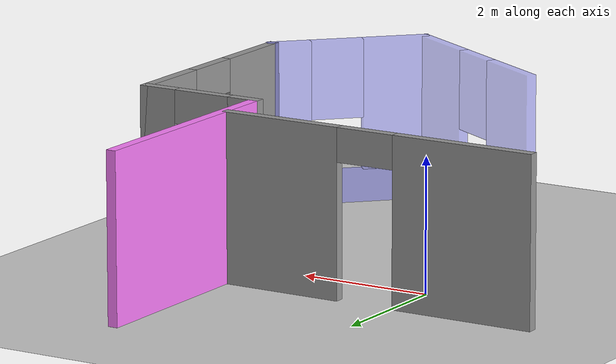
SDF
<sdf version="1.6">
 <world name="default">
  <model name="ground_plane">
   <static>1</static>
   <link name="link">
    <collision name="collision">
     <geometry><plane><normal>0 0 1</normal><size>100 100</size></plane></geometry>
     <surface>
      <contact><collide_bitmask>65535</collide_bitmask></contact>
      <friction><ode><mu>100</mu><mu2>50</mu2></ode></friction>
     </surface>
    </collision>
    <visual name="visual">
     <cast_shadows>0</cast_shadows>
     <geometry><plane><normal>0 0 1</normal><size>100 100</size></plane></geometry>
     <material>
      <script><uri>file://media/materials/scripts/gazebo.material</uri><name>Gazebo/Grey</name></script>
     </material>
    </visual>
   </link>
  </model>
  <model name="house">
   <link name="Wall_10">
    <pose>3.72086 -3.525 0 0 0 -2.35619</pose>
    <inertial>
     <mass>1</mass>
     <inertia><ixx>1</ixx><ixy>0</ixy><ixz>0</ixz><iyy>1</iyy><iyz>0</iyz><izz>1</izz></inertia>
    </inertial>
    <visual name="Wall_10_Visual_0">
     <pose>-0.917996 0 1.25 0 -0 0</pose>
     <geometry><box><size>0.664008 0.15 2.5</size></box></geometry>
     <material>
      <script><uri>file://media/materials/scripts/gazebo.material</uri><name>Gazebo/Grey</name></script>
      <ambient>0.5 0.5 1 0.5</ambient>
      <shader type="pixel"><normal_map>__default__</normal_map></shader>
      <diffuse>0.7 0.7 0.7 1</diffuse>
      <specular>0.01 0.01 0.01 1</specular>
      <emissive>0 0 0 1</emissive>
     </material>
     <meta><layer>0</layer></meta>
    </visual>
    <visual name="Wall_10_Visual_1">
     <pose>0.332004 0 0.25 0 -0 0</pose>
     <geometry><box><size>1.83599 0.15 0.5</size></box></geometry>
     <material>
      <script><uri>file://media/materials/scripts/gazebo.material</uri><name>Gazebo/Grey</name></script>
      <ambient>0.5 0.5 1 0.5</ambient>
      <shader type="pixel"><normal_map>__default__</normal_map></shader>
      <diffuse>0.7 0.7 0.7 1</diffuse>
      <specular>0.01 0.01 0.01 1</specular>
      <emissive>0 0 0 1</emissive>
     </material>
     <meta><layer>0</layer></meta>
    </visual>
    <visual name="Wall_10_Visual_2">
     <pose>0.732004 0 1.5 0 -0 0</pose>
     <geometry><box><size>1.03599 0.15 2</size></box></geometry>
     <material>
      <script><uri>file://media/materials/scripts/gazebo.material</uri><name>Gazebo/Grey</name></script>
      <ambient>0.5 0.5 1 0.5</ambient>
      <shader type="pixel"><normal_map>__default__</normal_map></shader>
      <diffuse>0.7 0.7 0.7 1</diffuse>
      <specular>0.01 0.01 0.01 1</specular>
      <emissive>0 0 0 1</emissive>
     </material>
     <meta><layer>0</layer></meta>
    </visual>
    <visual name="Wall_10_Visual_3">
     <pose>-0.185992 0 1.9 0 -0 0</pose>
     <geometry><box><size>0.8 0.15 1.2</size></box></geometry>
     <material>
      <script><uri>file://media/materials/scripts/gazebo.material</uri><name>Gazebo/Grey</name></script>
      <ambient>0.5 0.5 1 0.5</ambient>
      <shader type="pixel"><normal_map>__default__</normal_map></shader>
      <diffuse>0.7 0.7 0.7 1</diffuse>
      <specular>0.01 0.01 0.01 1</specular>
      <emissive>0 0 0 1</emissive>
     </material>
     <meta><layer>0</layer></meta>
    </visual>
    <collision name="Wall_10_Collision_0">
     <pose>-0.917996 0 1.25 0 -0 0</pose>
     <geometry><box><size>0.664008 0.15 2.5</size></box></geometry>
     <surface>
      <friction>
       <ode><mu>1</mu><mu2>1</mu2><fdir1>0 0 0</fdir1><slip1>0</slip1><slip2>0</slip2></ode>
       <torsional>
        <coefficient>1</coefficient>
        <patch_radius>0</patch_radius>
        <surface_radius>0</surface_radius>
        <use_patch_radius>1</use_patch_radius>
        <ode><slip>0</slip></ode>
       </torsional>
      </friction>
      <bounce><restitution_coefficient>0</restitution_coefficient><threshold>1e+06</threshold></bounce>
      <contact>
       <collide_without_contact>0</collide_without_contact>
       <collide_without_contact_bitmask>1</collide_without_contact_bitmask>
       <collide_bitmask>1</collide_bitmask>
       <ode>
        <soft_cfm>0</soft_cfm>
        <soft_erp>0.2</soft_erp>
        <kp>1e+13</kp>
        <kd>1</kd>
        <max_vel>0.01</max_vel>
        <min_depth>0</min_depth>
       </ode>
       <bullet>
        <split_impulse>1</split_impulse>
        <split_impulse_penetration_threshold>-0.01</split_impulse_penetration_threshold>
        <soft_cfm>0</soft_cfm>
        <soft_erp>0.2</soft_erp>
        <kp>1e+13</kp>
        <kd>1</kd>
       </bullet>
      </contact>
     </surface>
    </collision>
    <collision name="Wall_10_Collision_1">
     <pose>0.332004 0 0.25 0 -0 0</pose>
     <geometry><box><size>1.83599 0.15 0.5</size></box></geometry>
     <surface>
      <friction>
       <ode><mu>1</mu><mu2>1</mu2><fdir1>0 0 0</fdir1><slip1>0</slip1><slip2>0</slip2></ode>
       <torsional>
        <coefficient>1</coefficient>
        <patch_radius>0</patch_radius>
        <surface_radius>0</surface_radius>
        <use_patch_radius>1</use_patch_radius>
        <ode><slip>0</slip></ode>
       </torsional>
      </friction>
      <bounce><restitution_coefficient>0</restitution_coefficient><threshold>1e+06</threshold></bounce>
      <contact>
       <collide_without_contact>0</collide_without_contact>
       <collide_without_contact_bitmask>1</collide_without_contact_bitmask>
       <collide_bitmask>1</collide_bitmask>
       <ode>
        <soft_cfm>0</soft_cfm>
        <soft_erp>0.2</soft_erp>
        <kp>1e+13</kp>
        <kd>1</kd>
        <max_vel>0.01</max_vel>
        <min_depth>0</min_depth>
       </ode>
       <bullet>
        <split_impulse>1</split_impulse>
        <split_impulse_penetration_threshold>-0.01</split_impulse_penetration_threshold>
        <soft_cfm>0</soft_cfm>
        <soft_erp>0.2</soft_erp>
        <kp>1e+13</kp>
        <kd>1</kd>
       </bullet>
      </contact>
     </surface>
    </collision>
    <collision name="Wall_10_Collision_2">
     <pose>0.732004 0 1.5 0 -0 0</pose>
     <geometry><box><size>1.03599 0.15 2</size></box></geometry>
     <surface>
      <friction>
       <ode><mu>1</mu><mu2>1</mu2><fdir1>0 0 0</fdir1><slip1>0</slip1><slip2>0</slip2></ode>
       <torsional>
        <coefficient>1</coefficient>
        <patch_radius>0</patch_radius>
        <surface_radius>0</surface_radius>
        <use_patch_radius>1</use_patch_radius>
        <ode><slip>0</slip></ode>
       </torsional>
      </friction>
      <bounce><restitution_coefficient>0</restitution_coefficient><threshold>1e+06</threshold></bounce>
      <contact>
       <collide_without_contact>0</collide_without_contact>
       <collide_without_contact_bitmask>1</collide_without_contact_bitmask>
       <collide_bitmask>1</collide_bitmask>
       <ode>
        <soft_cfm>0</soft_cfm>
        <soft_erp>0.2</soft_erp>
        <kp>1e+13</kp>
        <kd>1</kd>
        <max_vel>0.01</max_vel>
        <min_depth>0</min_depth>
       </ode>
       <bullet>
        <split_impulse>1</split_impulse>
        <split_impulse_penetration_threshold>-0.01</split_impulse_penetration_threshold>
        <soft_cfm>0</soft_cfm>
        <soft_erp>0.2</soft_erp>
        <kp>1e+13</kp>
        <kd>1</kd>
       </bullet>
      </contact>
     </surface>
    </collision>
    <collision name="Wall_10_Collision_3">
     <pose>-0.185992 0 1.9 0 -0 0</pose>
     <geometry><box><size>0.8 0.15 1.2</size></box></geometry>
     <surface>
      <friction>
       <ode><mu>1</mu><mu2>1</mu2><fdir1>0 0 0</fdir1><slip1>0</slip1><slip2>0</slip2></ode>
       <torsional>
        <coefficient>1</coefficient>
        <patch_radius>0</patch_radius>
        <surface_radius>0</surface_radius>
        <use_patch_radius>1</use_patch_radius>
        <ode><slip>0</slip></ode>
       </torsional>
      </friction>
      <bounce><restitution_coefficient>0</restitution_coefficient><threshold>1e+06</threshold></bounce>
      <contact>
       <collide_without_contact>0</collide_without_contact>
       <collide_without_contact_bitmask>1</collide_without_contact_bitmask>
       <collide_bitmask>1</collide_bitmask>
       <ode>
        <soft_cfm>0</soft_cfm>
        <soft_erp>0.2</soft_erp>
        <kp>1e+13</kp>
        <kd>1</kd>
        <max_vel>0.01</max_vel>
        <min_depth>0</min_depth>
       </ode>
       <bullet>
        <split_impulse>1</split_impulse>
        <split_impulse_penetration_threshold>-0.01</split_impulse_penetration_threshold>
        <soft_cfm>0</soft_cfm>
        <soft_erp>0.2</soft_erp>
        <kp>1e+13</kp>
        <kd>1</kd>
       </bullet>
      </contact>
     </surface>
    </collision>
   </link>
   <link name="Wall_11">
    <pose>1.54767 -3.58085 0 0 -0 2.61799</pose>
    <inertial>
     <mass>1</mass>
     <inertia><ixx>1</ixx><ixy>0</ixy><ixz>0</ixz><iyy>1</iyy><iyz>0</iyz><izz>1</izz></inertia>
    </inertial>
    <visual name="Wall_11_Visual_0">
     <pose>-0.990098 0 1.25 0 -0 0</pose>
     <geometry><box><size>1.2698 0.15 2.5</size></box></geometry>
     <material>
      <script><uri>file://media/materials/scripts/gazebo.material</uri><name>Gazebo/Grey</name></script>
      <ambient>0.5 0.5 1 0.5</ambient>
      <shader type="pixel"><normal_map>__default__</normal_map></shader>
      <diffuse>0.7 0.7 0.7 1</diffuse>
      <specular>0.01 0.01 0.01 1</specular>
      <emissive>0 0 0 1</emissive>
     </material>
     <meta><layer>0</layer></meta>
    </visual>
    <visual name="Wall_11_Visual_1">
     <pose>0.634902 0 0.25 0 -0 0</pose>
     <geometry><box><size>1.9802 0.15 0.5</size></box></geometry>
     <material>
      <script><uri>file://media/materials/scripts/gazebo.material</uri><name>Gazebo/Grey</name></script>
      <ambient>0.5 0.5 1 0.5</ambient>
      <shader type="pixel"><normal_map>__default__</normal_map></shader>
      <diffuse>0.7 0.7 0.7 1</diffuse>
      <specular>0.01 0.01 0.01 1</specular>
      <emissive>0 0 0 1</emissive>
     </material>
     <meta><layer>0</layer></meta>
    </visual>
    <visual name="Wall_11_Visual_2">
     <pose>1.0349 0 1.5 0 -0 0</pose>
     <geometry><box><size>1.1802 0.15 2</size></box></geometry>
     <material>
      <script><uri>file://media/materials/scripts/gazebo.material</uri><name>Gazebo/Grey</name></script>
      <ambient>0.5 0.5 1 0.5</ambient>
      <shader type="pixel"><normal_map>__default__</normal_map></shader>
      <diffuse>0.7 0.7 0.7 1</diffuse>
      <specular>0.01 0.01 0.01 1</specular>
      <emissive>0 0 0 1</emissive>
     </material>
     <meta><layer>0</layer></meta>
    </visual>
    <visual name="Wall_11_Visual_3">
     <pose>0.044803 0 1.9 0 -0 0</pose>
     <geometry><box><size>0.8 0.15 1.2</size></box></geometry>
     <material>
      <script><uri>file://media/materials/scripts/gazebo.material</uri><name>Gazebo/Grey</name></script>
      <ambient>0.5 0.5 1 0.5</ambient>
      <shader type="pixel"><normal_map>__default__</normal_map></shader>
      <diffuse>0.7 0.7 0.7 1</diffuse>
      <specular>0.01 0.01 0.01 1</specular>
      <emissive>0 0 0 1</emissive>
     </material>
     <meta><layer>0</layer></meta>
    </visual>
    <collision name="Wall_11_Collision_0">
     <pose>-0.990098 0 1.25 0 -0 0</pose>
     <geometry><box><size>1.2698 0.15 2.5</size></box></geometry>
     <surface>
      <friction>
       <ode><mu>1</mu><mu2>1</mu2><fdir1>0 0 0</fdir1><slip1>0</slip1><slip2>0</slip2></ode>
       <torsional>
        <coefficient>1</coefficient>
        <patch_radius>0</patch_radius>
        <surface_radius>0</surface_radius>
        <use_patch_radius>1</use_patch_radius>
        <ode><slip>0</slip></ode>
       </torsional>
      </friction>
      <bounce><restitution_coefficient>0</restitution_coefficient><threshold>1e+06</threshold></bounce>
      <contact>
       <collide_without_contact>0</collide_without_contact>
       <collide_without_contact_bitmask>1</collide_without_contact_bitmask>
       <collide_bitmask>1</collide_bitmask>
       <ode>
        <soft_cfm>0</soft_cfm>
        <soft_erp>0.2</soft_erp>
        <kp>1e+13</kp>
        <kd>1</kd>
        <max_vel>0.01</max_vel>
        <min_depth>0</min_depth>
       </ode>
       <bullet>
        <split_impulse>1</split_impulse>
        <split_impulse_penetration_threshold>-0.01</split_impulse_penetration_threshold>
        <soft_cfm>0</soft_cfm>
        <soft_erp>0.2</soft_erp>
        <kp>1e+13</kp>
        <kd>1</kd>
       </bullet>
      </contact>
     </surface>
    </collision>
    <collision name="Wall_11_Collision_1">
     <pose>0.634902 0 0.25 0 -0 0</pose>
     <geometry><box><size>1.9802 0.15 0.5</size></box></geometry>
     <surface>
      <friction>
       <ode><mu>1</mu><mu2>1</mu2><fdir1>0 0 0</fdir1><slip1>0</slip1><slip2>0</slip2></ode>
       <torsional>
        <coefficient>1</coefficient>
        <patch_radius>0</patch_radius>
        <surface_radius>0</surface_radius>
        <use_patch_radius>1</use_patch_radius>
        <ode><slip>0</slip></ode>
       </torsional>
      </friction>
      <bounce><restitution_coefficient>0</restitution_coefficient><threshold>1e+06</threshold></bounce>
      <contact>
       <collide_without_contact>0</collide_without_contact>
       <collide_without_contact_bitmask>1</collide_without_contact_bitmask>
       <collide_bitmask>1</collide_bitmask>
       <ode>
        <soft_cfm>0</soft_cfm>
        <soft_erp>0.2</soft_erp>
        <kp>1e+13</kp>
        <kd>1</kd>
        <max_vel>0.01</max_vel>
        <min_depth>0</min_depth>
       </ode>
       <bullet>
        <split_impulse>1</split_impulse>
        <split_impulse_penetration_threshold>-0.01</split_impulse_penetration_threshold>
        <soft_cfm>0</soft_cfm>
        <soft_erp>0.2</soft_erp>
        <kp>1e+13</kp>
        <kd>1</kd>
       </bullet>
      </contact>
     </surface>
    </collision>
    <collision name="Wall_11_Collision_2">
     <pose>1.0349 0 1.5 0 -0 0</pose>
     <geometry><box><size>1.1802 0.15 2</size></box></geometry>
     <surface>
      <friction>
       <ode><mu>1</mu><mu2>1</mu2><fdir1>0 0 0</fdir1><slip1>0</slip1><slip2>0</slip2></ode>
       <torsional>
        <coefficient>1</coefficient>
        <patch_radius>0</patch_radius>
        <surface_radius>0</surface_radius>
        <use_patch_radius>1</use_patch_radius>
        <ode><slip>0</slip></ode>
       </torsional>
      </friction>
      <bounce><restitution_coefficient>0</restitution_coefficient><threshold>1e+06</threshold></bounce>
      <contact>
       <collide_without_contact>0</collide_without_contact>
       <collide_without_contact_bitmask>1</collide_without_contact_bitmask>
       <collide_bitmask>1</collide_bitmask>
       <ode>
        <soft_cfm>0</soft_cfm>
        <soft_erp>0.2</soft_erp>
        <kp>1e+13</kp>
        <kd>1</kd>
        <max_vel>0.01</max_vel>
        <min_depth>0</min_depth>
       </ode>
       <bullet>
        <split_impulse>1</split_impulse>
        <split_impulse_penetration_threshold>-0.01</split_impulse_penetration_threshold>
        <soft_cfm>0</soft_cfm>
        <soft_erp>0.2</soft_erp>
        <kp>1e+13</kp>
        <kd>1</kd>
       </bullet>
      </contact>
     </surface>
    </collision>
    <collision name="Wall_11_Collision_3">
     <pose>0.044803 0 1.9 0 -0 0</pose>
     <geometry><box><size>0.8 0.15 1.2</size></box></geometry>
     <surface>
      <friction>
       <ode><mu>1</mu><mu2>1</mu2><fdir1>0 0 0</fdir1><slip1>0</slip1><slip2>0</slip2></ode>
       <torsional>
        <coefficient>1</coefficient>
        <patch_radius>0</patch_radius>
        <surface_radius>0</surface_radius>
        <use_patch_radius>1</use_patch_radius>
        <ode><slip>0</slip></ode>
       </torsional>
      </friction>
      <bounce><restitution_coefficient>0</restitution_coefficient><threshold>1e+06</threshold></bounce>
      <contact>
       <collide_without_contact>0</collide_without_contact>
       <collide_without_contact_bitmask>1</collide_without_contact_bitmask>
       <collide_bitmask>1</collide_bitmask>
       <ode>
        <soft_cfm>0</soft_cfm>
        <soft_erp>0.2</soft_erp>
        <kp>1e+13</kp>
        <kd>1</kd>
        <max_vel>0.01</max_vel>
        <min_depth>0</min_depth>
       </ode>
       <bullet>
        <split_impulse>1</split_impulse>
        <split_impulse_penetration_threshold>-0.01</split_impulse_penetration_threshold>
        <soft_cfm>0</soft_cfm>
        <soft_erp>0.2</soft_erp>
        <kp>1e+13</kp>
        <kd>1</kd>
       </bullet>
      </contact>
     </surface>
    </collision>
   </link>
   <link name="Wall_24">
    <pose>4.55171 -1.01915 0 0 -0 1.5708</pose>
    <inertial>
     <mass>1</mass>
     <inertia><ixx>1</ixx><ixy>0</ixy><ixz>0</ixz><iyy>1</iyy><iyz>0</iyz><izz>1</izz></inertia>
    </inertial>
    <visual name="Wall_24_Visual_0">
     <pose>-1.0809 0 1.25 0 -0 0</pose>
     <geometry><box><size>1.3382 0.15 2.5</size></box></geometry>
     <material>
      <script><uri>file://media/materials/scripts/gazebo.material</uri><name>Gazebo/Grey</name></script>
      <ambient>0.5 0.5 0.5 0.5</ambient>
      <shader type="pixel"><normal_map>__default__</normal_map></shader>
      <diffuse>0.7 0.7 0.7 1</diffuse>
      <specular>0.01 0.01 0.01 1</specular>
      <emissive>0 0 0 1</emissive>
     </material>
     <meta><layer>0</layer></meta>
    </visual>
    <visual name="Wall_24_Visual_1">
     <pose>1.1191 0 1.25 0 -0 0</pose>
     <geometry><box><size>1.2618 0.15 2.5</size></box></geometry>
     <material>
      <script><uri>file://media/materials/scripts/gazebo.material</uri><name>Gazebo/Grey</name></script>
      <ambient>0.5 0.5 0.5 0.5</ambient>
      <shader type="pixel"><normal_map>__default__</normal_map></shader>
      <diffuse>0.7 0.7 0.7 1</diffuse>
      <specular>0.01 0.01 0.01 1</specular>
      <emissive>0 0 0 1</emissive>
     </material>
     <meta><layer>0</layer></meta>
    </visual>
    <visual name="Wall_24_Visual_2">
     <pose>0.038199 0 2.25 0 -0 0</pose>
     <geometry><box><size>0.9 0.15 0.5</size></box></geometry>
     <material>
      <script><uri>file://media/materials/scripts/gazebo.material</uri><name>Gazebo/Grey</name></script>
      <ambient>0.5 0.5 0.5 0.5</ambient>
      <shader type="pixel"><normal_map>__default__</normal_map></shader>
      <diffuse>0.7 0.7 0.7 1</diffuse>
      <specular>0.01 0.01 0.01 1</specular>
      <emissive>0 0 0 1</emissive>
     </material>
     <meta><layer>0</layer></meta>
    </visual>
    <collision name="Wall_24_Collision_0">
     <pose>-1.0809 0 1.25 0 -0 0</pose>
     <geometry><box><size>1.3382 0.15 2.5</size></box></geometry>
     <surface>
      <friction>
       <ode><mu>1</mu><mu2>1</mu2><fdir1>0 0 0</fdir1><slip1>0</slip1><slip2>0</slip2></ode>
       <torsional>
        <coefficient>1</coefficient>
        <patch_radius>0</patch_radius>
        <surface_radius>0</surface_radius>
        <use_patch_radius>1</use_patch_radius>
        <ode><slip>0</slip></ode>
       </torsional>
      </friction>
      <bounce><restitution_coefficient>0</restitution_coefficient><threshold>1e+06</threshold></bounce>
      <contact>
       <collide_without_contact>0</collide_without_contact>
       <collide_without_contact_bitmask>1</collide_without_contact_bitmask>
       <collide_bitmask>1</collide_bitmask>
       <ode>
        <soft_cfm>0</soft_cfm>
        <soft_erp>0.2</soft_erp>
        <kp>1e+13</kp>
        <kd>1</kd>
        <max_vel>0.01</max_vel>
        <min_depth>0</min_depth>
       </ode>
       <bullet>
        <split_impulse>1</split_impulse>
        <split_impulse_penetration_threshold>-0.01</split_impulse_penetration_threshold>
        <soft_cfm>0</soft_cfm>
        <soft_erp>0.2</soft_erp>
        <kp>1e+13</kp>
        <kd>1</kd>
       </bullet>
      </contact>
     </surface>
    </collision>
    <collision name="Wall_24_Collision_1">
     <pose>1.1191 0 1.25 0 -0 0</pose>
     <geometry><box><size>1.2618 0.15 2.5</size></box></geometry>
     <surface>
      <friction>
       <ode><mu>1</mu><mu2>1</mu2><fdir1>0 0 0</fdir1><slip1>0</slip1><slip2>0</slip2></ode>
       <torsional>
        <coefficient>1</coefficient>
        <patch_radius>0</patch_radius>
        <surface_radius>0</surface_radius>
        <use_patch_radius>1</use_patch_radius>
        <ode><slip>0</slip></ode>
       </torsional>
      </friction>
      <bounce><restitution_coefficient>0</restitution_coefficient><threshold>1e+06</threshold></bounce>
      <contact>
       <collide_without_contact>0</collide_without_contact>
       <collide_without_contact_bitmask>1</collide_without_contact_bitmask>
       <collide_bitmask>1</collide_bitmask>
       <ode>
        <soft_cfm>0</soft_cfm>
        <soft_erp>0.2</soft_erp>
        <kp>1e+13</kp>
        <kd>1</kd>
        <max_vel>0.01</max_vel>
        <min_depth>0</min_depth>
       </ode>
       <bullet>
        <split_impulse>1</split_impulse>
        <split_impulse_penetration_threshold>-0.01</split_impulse_penetration_threshold>
        <soft_cfm>0</soft_cfm>
        <soft_erp>0.2</soft_erp>
        <kp>1e+13</kp>
        <kd>1</kd>
       </bullet>
      </contact>
     </surface>
    </collision>
    <collision name="Wall_24_Collision_2">
     <pose>0.038199 0 2.25 0 -0 0</pose>
     <geometry><box><size>0.9 0.15 0.5</size></box></geometry>
     <surface>
      <friction>
       <ode><mu>1</mu><mu2>1</mu2><fdir1>0 0 0</fdir1><slip1>0</slip1><slip2>0</slip2></ode>
       <torsional>
        <coefficient>1</coefficient>
        <patch_radius>0</patch_radius>
        <surface_radius>0</surface_radius>
        <use_patch_radius>1</use_patch_radius>
        <ode><slip>0</slip></ode>
       </torsional>
      </friction>
      <bounce><restitution_coefficient>0</restitution_coefficient><threshold>1e+06</threshold></bounce>
      <contact>
       <collide_without_contact>0</collide_without_contact>
       <collide_without_contact_bitmask>1</collide_without_contact_bitmask>
       <collide_bitmask>1</collide_bitmask>
       <ode>
        <soft_cfm>0</soft_cfm>
        <soft_erp>0.2</soft_erp>
        <kp>1e+13</kp>
        <kd>1</kd>
        <max_vel>0.01</max_vel>
        <min_depth>0</min_depth>
       </ode>
       <bullet>
        <split_impulse>1</split_impulse>
        <split_impulse_penetration_threshold>-0.01</split_impulse_penetration_threshold>
        <soft_cfm>0</soft_cfm>
        <soft_erp>0.2</soft_erp>
        <kp>1e+13</kp>
        <kd>1</kd>
       </bullet>
      </contact>
     </surface>
    </collision>
   </link>
   <link name="Wall_27">
    <pose>3.62671 0.655851 0 0 -0 3.14159</pose>
    <inertial>
     <mass>1</mass>
     <inertia><ixx>1</ixx><ixy>0</ixy><ixz>0</ixz><iyy>1</iyy><iyz>0</iyz><izz>1</izz></inertia>
    </inertial>
    <visual name="Wall_27_Visual_0">
     <pose>-0.702488 0 1.25 0 -0 0</pose>
     <geometry><box><size>0.595025 0.15 2.5</size></box></geometry>
     <material>
      <script><uri>file://media/materials/scripts/gazebo.material</uri><name>Gazebo/Grey</name></script>
      <ambient>0.5 0.5 0.5 0.5</ambient>
      <shader type="pixel"><normal_map>__default__</normal_map></shader>
      <diffuse>0.7 0.7 0.7 1</diffuse>
      <specular>0.01 0.01 0.01 1</specular>
      <emissive>0 0 0 1</emissive>
     </material>
     <meta><layer>0</layer></meta>
    </visual>
    <visual name="Wall_27_Visual_1">
     <pose>0.747512 0 1.25 0 -0 0</pose>
     <geometry><box><size>0.504975 0.15 2.5</size></box></geometry>
     <material>
      <script><uri>file://media/materials/scripts/gazebo.material</uri><name>Gazebo/Grey</name></script>
      <ambient>0.5 0.5 0.5 0.5</ambient>
      <shader type="pixel"><normal_map>__default__</normal_map></shader>
      <diffuse>0.7 0.7 0.7 1</diffuse>
      <specular>0.01 0.01 0.01 1</specular>
      <emissive>0 0 0 1</emissive>
     </material>
     <meta><layer>0</layer></meta>
    </visual>
    <visual name="Wall_27_Visual_2">
     <pose>0.045025 0 2.25 0 -0 0</pose>
     <geometry><box><size>0.9 0.15 0.5</size></box></geometry>
     <material>
      <script><uri>file://media/materials/scripts/gazebo.material</uri><name>Gazebo/Grey</name></script>
      <ambient>0.5 0.5 0.5 0.5</ambient>
      <shader type="pixel"><normal_map>__default__</normal_map></shader>
      <diffuse>0.7 0.7 0.7 1</diffuse>
      <specular>0.01 0.01 0.01 1</specular>
      <emissive>0 0 0 1</emissive>
     </material>
     <meta><layer>0</layer></meta>
    </visual>
    <collision name="Wall_27_Collision_0">
     <pose>-0.702488 0 1.25 0 -0 0</pose>
     <geometry><box><size>0.595025 0.15 2.5</size></box></geometry>
     <surface>
      <friction>
       <ode><mu>1</mu><mu2>1</mu2><fdir1>0 0 0</fdir1><slip1>0</slip1><slip2>0</slip2></ode>
       <torsional>
        <coefficient>1</coefficient>
        <patch_radius>0</patch_radius>
        <surface_radius>0</surface_radius>
        <use_patch_radius>1</use_patch_radius>
        <ode><slip>0</slip></ode>
       </torsional>
      </friction>
      <bounce><restitution_coefficient>0</restitution_coefficient><threshold>1e+06</threshold></bounce>
      <contact>
       <collide_without_contact>0</collide_without_contact>
       <collide_without_contact_bitmask>1</collide_without_contact_bitmask>
       <collide_bitmask>1</collide_bitmask>
       <ode>
        <soft_cfm>0</soft_cfm>
        <soft_erp>0.2</soft_erp>
        <kp>1e+13</kp>
        <kd>1</kd>
        <max_vel>0.01</max_vel>
        <min_depth>0</min_depth>
       </ode>
       <bullet>
        <split_impulse>1</split_impulse>
        <split_impulse_penetration_threshold>-0.01</split_impulse_penetration_threshold>
        <soft_cfm>0</soft_cfm>
        <soft_erp>0.2</soft_erp>
        <kp>1e+13</kp>
        <kd>1</kd>
       </bullet>
      </contact>
     </surface>
    </collision>
    <collision name="Wall_27_Collision_2">
     <pose>0.045025 0 2.25 0 -0 0</pose>
     <geometry><box><size>0.9 0.15 0.5</size></box></geometry>
     <surface>
      <friction>
       <ode><mu>1</mu><mu2>1</mu2><fdir1>0 0 0</fdir1><slip1>0</slip1><slip2>0</slip2></ode>
       <torsional>
        <coefficient>1</coefficient>
        <patch_radius>0</patch_radius>
        <surface_radius>0</surface_radius>
        <use_patch_radius>1</use_patch_radius>
        <ode><slip>0</slip></ode>
       </torsional>
      </friction>
      <bounce><restitution_coefficient>0</restitution_coefficient><threshold>1e+06</threshold></bounce>
      <contact>
       <collide_without_contact>0</collide_without_contact>
       <collide_without_contact_bitmask>1</collide_without_contact_bitmask>
       <collide_bitmask>1</collide_bitmask>
       <ode>
        <soft_cfm>0</soft_cfm>
        <soft_erp>0.2</soft_erp>
        <kp>1e+13</kp>
        <kd>1</kd>
        <max_vel>0.01</max_vel>
        <min_depth>0</min_depth>
       </ode>
       <bullet>
        <split_impulse>1</split_impulse>
        <split_impulse_penetration_threshold>-0.01</split_impulse_penetration_threshold>
        <soft_cfm>0</soft_cfm>
        <soft_erp>0.2</soft_erp>
        <kp>1e+13</kp>
        <kd>1</kd>
       </bullet>
      </contact>
     </surface>
    </collision>
    <collision name="Wall_27_Collision_1">
     <pose>0.747512 0 1.25 0 -0 0</pose>
     <geometry><box><size>0.504975 0.15 2.5</size></box></geometry>
     <surface>
      <friction>
       <ode><mu>1</mu><mu2>1</mu2><fdir1>0 0 0</fdir1><slip1>0</slip1><slip2>0</slip2></ode>
       <torsional>
        <coefficient>1</coefficient>
        <patch_radius>0</patch_radius>
        <surface_radius>0</surface_radius>
        <use_patch_radius>1</use_patch_radius>
        <ode><slip>0</slip></ode>
       </torsional>
      </friction>
      <bounce><restitution_coefficient>0</restitution_coefficient><threshold>1e+06</threshold></bounce>
      <contact>
       <collide_without_contact>0</collide_without_contact>
       <collide_without_contact_bitmask>1</collide_without_contact_bitmask>
       <collide_bitmask>1</collide_bitmask>
       <ode>
        <soft_cfm>0</soft_cfm>
        <soft_erp>0.2</soft_erp>
        <kp>1e+13</kp>
        <kd>1</kd>
        <max_vel>0.01</max_vel>
        <min_depth>0</min_depth>
       </ode>
       <bullet>
        <split_impulse>1</split_impulse>
        <split_impulse_penetration_threshold>-0.01</split_impulse_penetration_threshold>
        <soft_cfm>0</soft_cfm>
        <soft_erp>0.2</soft_erp>
        <kp>1e+13</kp>
        <kd>1</kd>
       </bullet>
      </contact>
     </surface>
    </collision>
   </link>
   <link name="Wall_29">
    <pose>2.70171 2.45585 0 0 -0 1.5708</pose>
    <inertial>
     <mass>1</mass>
     <inertia><ixx>1</ixx><ixy>0</ixy><ixz>0</ixz><iyy>1</iyy><iyz>0</iyz><izz>1</izz></inertia>
    </inertial>
    <visual name="Wall_29_Visual">
     <pose>0 0 1.25 0 -0 0</pose>
     <geometry><box><size>3.75 0.15 2.5</size></box></geometry>
     <material>
      <script><uri>file://media/materials/scripts/gazebo.material</uri><name>Gazebo/Grey</name></script>
      <ambient>1 0.5 1 1</ambient>
      <shader type="pixel"><normal_map>__default__</normal_map></shader>
      <diffuse>0.7 0.7 0.7 1</diffuse>
      <specular>0.01 0.01 0.01 1</specular>
      <emissive>0 0 0 1</emissive>
     </material>
     <meta><layer>0</layer></meta>
    </visual>
    <collision name="Wall_29_Collision">
     <pose>0 0 1.25 0 -0 0</pose>
     <geometry><box><size>3.75 0.15 2.5</size></box></geometry>
     <surface>
      <friction>
       <ode><mu>1</mu><mu2>1</mu2><fdir1>0 0 0</fdir1><slip1>0</slip1><slip2>0</slip2></ode>
       <torsional>
        <coefficient>1</coefficient>
        <patch_radius>0</patch_radius>
        <surface_radius>0</surface_radius>
        <use_patch_radius>1</use_patch_radius>
        <ode><slip>0</slip></ode>
       </torsional>
      </friction>
      <bounce><restitution_coefficient>0</restitution_coefficient><threshold>1e+06</threshold></bounce>
      <contact>
       <collide_without_contact>0</collide_without_contact>
       <collide_without_contact_bitmask>1</collide_without_contact_bitmask>
       <collide_bitmask>1</collide_bitmask>
       <ode>
        <soft_cfm>0</soft_cfm>
        <soft_erp>0.2</soft_erp>
        <kp>1e+13</kp>
        <kd>1</kd>
        <max_vel>0.01</max_vel>
        <min_depth>0</min_depth>
       </ode>
       <bullet>
        <split_impulse>1</split_impulse>
        <split_impulse_penetration_threshold>-0.01</split_impulse_penetration_threshold>
        <soft_cfm>0</soft_cfm>
        <soft_erp>0.2</soft_erp>
        <kp>1e+13</kp>
        <kd>1</kd>
       </bullet>
      </contact>
     </surface>
    </collision>
   </link>
   <link name="Wall_32">
    <pose>0.197247 1.46999 0 0 -0 0</pose>
    <inertial>
     <mass>1</mass>
     <inertia><ixx>1</ixx><ixy>0</ixy><ixz>0</ixz><iyy>1</iyy><iyz>0</iyz><izz>1</izz></inertia>
    </inertial>
    <visual name="Wall_32_Visual_0">
     <pose>-1.39778 0 1.25 0 -0 0</pose>
     <geometry><box><size>2.20444 0.15 2.5</size></box></geometry>
     <material>
      <script><uri>file://media/materials/scripts/gazebo.material</uri><name>Gazebo/Grey</name></script>
      <ambient>0.5 0.5 0.5 0.5</ambient>
      <shader type="pixel"><normal_map>__default__</normal_map></shader>
      <diffuse>0.7 0.7 0.7 1</diffuse>
      <specular>0.01 0.01 0.01 1</specular>
      <emissive>0 0 0 1</emissive>
     </material>
     <meta><layer>0</layer></meta>
    </visual>
    <visual name="Wall_32_Visual_1">
     <pose>1.55222 0 1.25 0 -0 0</pose>
     <geometry><box><size>1.89556 0.15 2.5</size></box></geometry>
     <material>
      <script><uri>file://media/materials/scripts/gazebo.material</uri><name>Gazebo/Grey</name></script>
      <ambient>0.5 0.5 0.5 0.5</ambient>
      <shader type="pixel"><normal_map>__default__</normal_map></shader>
      <diffuse>0.7 0.7 0.7 1</diffuse>
      <specular>0.01 0.01 0.01 1</specular>
      <emissive>0 0 0 1</emissive>
     </material>
     <meta><layer>0</layer></meta>
    </visual>
    <visual name="Wall_32_Visual_2">
     <pose>0.154436 0 2.25 0 -0 0</pose>
     <geometry><box><size>0.9 0.15 0.5</size></box></geometry>
     <material>
      <script><uri>file://media/materials/scripts/gazebo.material</uri><name>Gazebo/Grey</name></script>
      <ambient>0.5 0.5 0.5 0.5</ambient>
      <shader type="pixel"><normal_map>__default__</normal_map></shader>
      <diffuse>0.7 0.7 0.7 1</diffuse>
      <specular>0.01 0.01 0.01 1</specular>
      <emissive>0 0 0 1</emissive>
     </material>
     <meta><layer>0</layer></meta>
    </visual>
    <collision name="Wall_32_Collision_0">
     <pose>-1.39778 0 1.25 0 -0 0</pose>
     <geometry><box><size>2.20444 0.15 2.5</size></box></geometry>
     <surface>
      <friction>
       <ode><mu>1</mu><mu2>1</mu2><fdir1>0 0 0</fdir1><slip1>0</slip1><slip2>0</slip2></ode>
       <torsional>
        <coefficient>1</coefficient>
        <patch_radius>0</patch_radius>
        <surface_radius>0</surface_radius>
        <use_patch_radius>1</use_patch_radius>
        <ode><slip>0</slip></ode>
       </torsional>
      </friction>
      <bounce><restitution_coefficient>0</restitution_coefficient><threshold>1e+06</threshold></bounce>
      <contact>
       <collide_without_contact>0</collide_without_contact>
       <collide_without_contact_bitmask>1</collide_without_contact_bitmask>
       <collide_bitmask>1</collide_bitmask>
       <ode>
        <soft_cfm>0</soft_cfm>
        <soft_erp>0.2</soft_erp>
        <kp>1e+13</kp>
        <kd>1</kd>
        <max_vel>0.01</max_vel>
        <min_depth>0</min_depth>
       </ode>
       <bullet>
        <split_impulse>1</split_impulse>
        <split_impulse_penetration_threshold>-0.01</split_impulse_penetration_threshold>
        <soft_cfm>0</soft_cfm>
        <soft_erp>0.2</soft_erp>
        <kp>1e+13</kp>
        <kd>1</kd>
       </bullet>
      </contact>
     </surface>
    </collision>
    <collision name="Wall_32_Collision_1">
     <pose>1.55222 0 1.25 0 -0 0</pose>
     <geometry><box><size>1.89556 0.15 2.5</size></box></geometry>
     <surface>
      <friction>
       <ode><mu>1</mu><mu2>1</mu2><fdir1>0 0 0</fdir1><slip1>0</slip1><slip2>0</slip2></ode>
       <torsional>
        <coefficient>1</coefficient>
        <patch_radius>0</patch_radius>
        <surface_radius>0</surface_radius>
        <use_patch_radius>1</use_patch_radius>
        <ode><slip>0</slip></ode>
       </torsional>
      </friction>
      <bounce><restitution_coefficient>0</restitution_coefficient><threshold>1e+06</threshold></bounce>
      <contact>
       <collide_without_contact>0</collide_without_contact>
       <collide_without_contact_bitmask>1</collide_without_contact_bitmask>
       <collide_bitmask>1</collide_bitmask>
       <ode>
        <soft_cfm>0</soft_cfm>
        <soft_erp>0.2</soft_erp>
        <kp>1e+13</kp>
        <kd>1</kd>
        <max_vel>0.01</max_vel>
        <min_depth>0</min_depth>
       </ode>
       <bullet>
        <split_impulse>1</split_impulse>
        <split_impulse_penetration_threshold>-0.01</split_impulse_penetration_threshold>
        <soft_cfm>0</soft_cfm>
        <soft_erp>0.2</soft_erp>
        <kp>1e+13</kp>
        <kd>1</kd>
       </bullet>
      </contact>
     </surface>
    </collision>
    <collision name="Wall_32_Collision_2">
     <pose>0.154436 0 2.25 0 -0 0</pose>
     <geometry><box><size>0.9 0.15 0.5</size></box></geometry>
     <surface>
      <friction>
       <ode><mu>1</mu><mu2>1</mu2><fdir1>0 0 0</fdir1><slip1>0</slip1><slip2>0</slip2></ode>
       <torsional>
        <coefficient>1</coefficient>
        <patch_radius>0</patch_radius>
        <surface_radius>0</surface_radius>
        <use_patch_radius>1</use_patch_radius>
        <ode><slip>0</slip></ode>
       </torsional>
      </friction>
      <bounce><restitution_coefficient>0</restitution_coefficient><threshold>1e+06</threshold></bounce>
      <contact>
       <collide_without_contact>0</collide_without_contact>
       <collide_without_contact_bitmask>1</collide_without_contact_bitmask>
       <collide_bitmask>1</collide_bitmask>
       <ode>
        <soft_cfm>0</soft_cfm>
        <soft_erp>0.2</soft_erp>
        <kp>1e+13</kp>
        <kd>1</kd>
        <max_vel>0.01</max_vel>
        <min_depth>0</min_depth>
       </ode>
       <bullet>
        <split_impulse>1</split_impulse>
        <split_impulse_penetration_threshold>-0.01</split_impulse_penetration_threshold>
        <soft_cfm>0</soft_cfm>
        <soft_erp>0.2</soft_erp>
        <kp>1e+13</kp>
        <kd>1</kd>
       </bullet>
      </contact>
     </surface>
    </collision>
   </link>
   <static>1</static>
   <pose>0.07793 -0.58211 0 0 -0 0</pose>
  </model>
  <model name="unit_cylinder">
   <link name="link">
    <inertial>
     <mass>1</mass>
     <inertia><ixx>0.145833</ixx><ixy>0</ixy><ixz>0</ixz><iyy>0.145833</iyy><iyz>0</iyz><izz>0.125</izz></inertia>
    </inertial>
    <visual name="visual">
     <geometry><cylinder><radius>0.5</radius><length>1</length></cylinder></geometry>
     <material>
      <script><name>Gazebo/Grey</name><uri>file://media/materials/scripts/gazebo.material</uri></script>
      <shader type="pixel"><normal_map>__default__</normal_map></shader>
      <ambient>0.3 0.6 0.3 1</ambient>
      <diffuse>0.7 0.7 0.7 1</diffuse>
      <specular>0.01 0.01 0.01 1</specular>
      <emissive>0 0 0 1</emissive>
     </material>
    </visual>
    <collision name="collision">
     <geometry><cylinder><radius>0.5</radius><length>1</length></cylinder></geometry>
     <surface>
      <friction>
       <ode><mu>1</mu><mu2>1</mu2><fdir1>0 0 0</fdir1><slip1>0</slip1><slip2>0</slip2></ode>
       <torsional>
        <coefficient>1</coefficient>
        <patch_radius>0</patch_radius>
        <surface_radius>0</surface_radius>
        <use_patch_radius>1</use_patch_radius>
        <ode><slip>0</slip></ode>
       </torsional>
      </friction>
      <bounce><restitution_coefficient>0</restitution_coefficient><threshold>1e+06</threshold></bounce>
      <contact>
       <collide_without_contact>0</collide_without_contact>
       <collide_without_contact_bitmask>1</collide_without_contact_bitmask>
       <collide_bitmask>1</collide_bitmask>
       <ode>
        <soft_cfm>0</soft_cfm>
        <soft_erp>0.2</soft_erp>
        <kp>1e+13</kp>
        <kd>1</kd>
        <max_vel>0.01</max_vel>
        <min_depth>0</min_depth>
       </ode>
       <bullet>
        <split_impulse>1</split_impulse>
        <split_impulse_penetration_threshold>-0.01</split_impulse_penetration_threshold>
        <soft_cfm>0</soft_cfm>
        <soft_erp>0.2</soft_erp>
        <kp>1e+13</kp>
        <kd>1</kd>
       </bullet>
      </contact>
     </surface>
    </collision>
   </link>
   <static>0</static>
   <pose>3.95569 -2.78179 0.499991 0 -0 0</pose>
  </model>
 </world>
</sdf>
